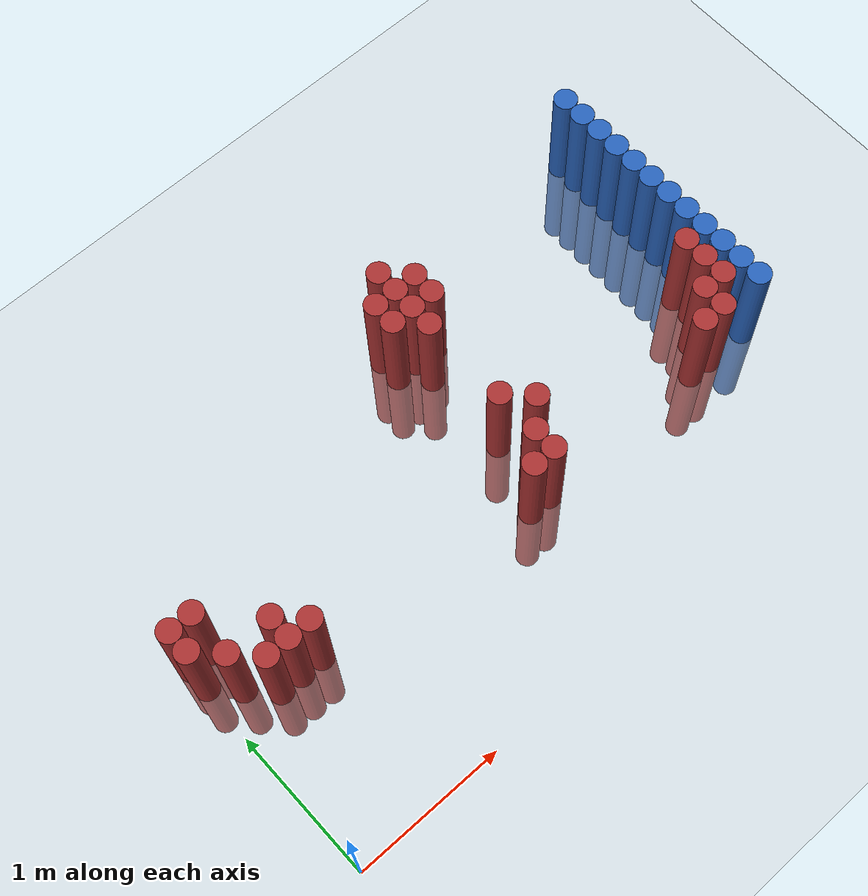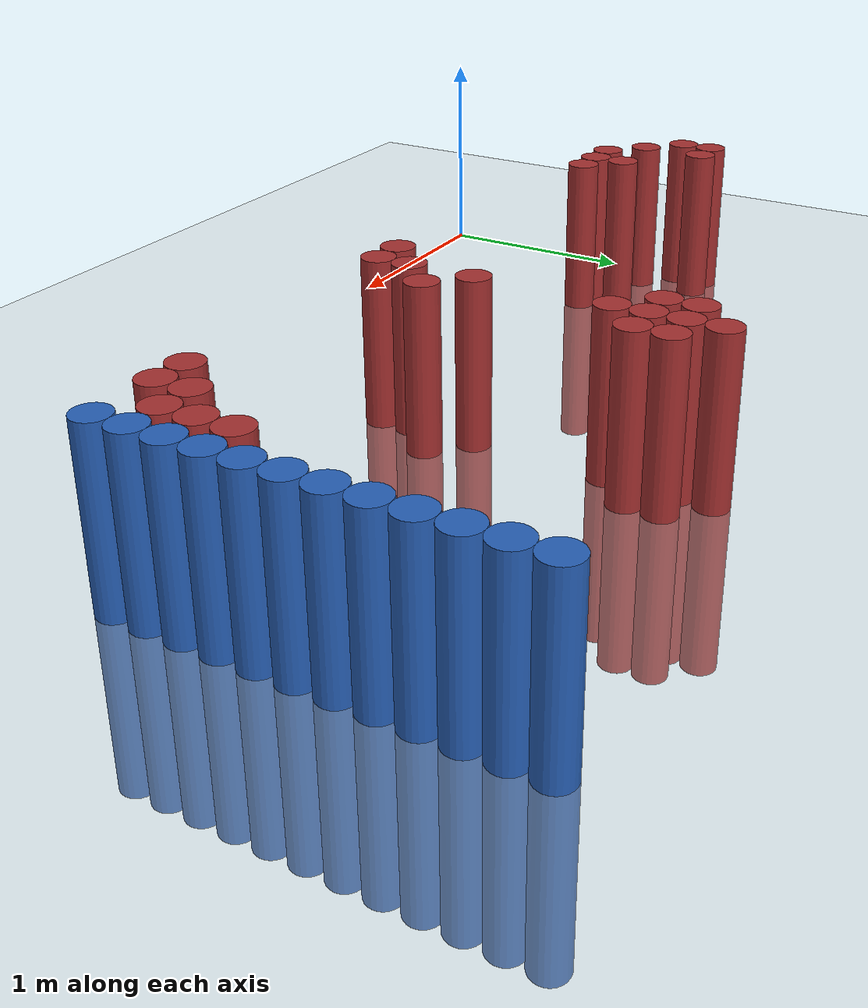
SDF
<sdf version="1.6">
 <world name="default">
  <model name="ground_plane">
   <static>1</static>
   <link name="link">
    <collision name="collision">
     <geometry><plane><normal>0 0 1</normal><size>100 100</size></plane></geometry>
     <surface><friction><ode><mu>100</mu><mu2>50</mu2></ode></friction></surface>
    </collision>
    <visual name="visual">
     <cast_shadows>0</cast_shadows>
     <geometry><plane><normal>0 0 1</normal><size>100 100</size></plane></geometry>
     <material>
      <script><uri>file://media/materials/scripts/gazebo.material</uri><name>Gazebo/Grey</name></script>
     </material>
    </visual>
   </link>
  </model>
  <model name="unit_cylinder_126">
   <static>1</static>
   <pose>3.925000 0.925000 0.000000 0.000000 0.000000 0.000000</pose>
   <link name="link">
    <inertial>
     <mass>1</mass>
     <inertia><ixx>0.145833</ixx><ixy>0</ixy><ixz>0</ixz><iyy>0.145833</iyy><iyz>0</iyz><izz>0.125</izz></inertia>
    </inertial>
    <collision name="collision">
     <geometry><cylinder><radius>0.075000</radius><length>1.5</length></cylinder></geometry>
    </collision>
    <visual name="visual">
     <geometry><cylinder><radius>0.075000</radius><length>1.5</length></cylinder></geometry>
     <material>
      <ambient>0.152000 0.379000 0.720000 1</ambient>
      <diffuse>0.152000 0.379000 0.720000 1</diffuse>
     </material>
     <material>
      <script><name>Gazebo/Grey</name><uri>file://media/materials/scripts/gazebo.material</uri></script>
     </material>
    </visual>
   </link>
  </model>
  <model name="unit_cylinder_128">
   <static>1</static>
   <pose>3.925000 1.075000 0.000000 0.000000 0.000000 0.000000</pose>
   <link name="link">
    <inertial>
     <mass>1</mass>
     <inertia><ixx>0.145833</ixx><ixy>0</ixy><ixz>0</ixz><iyy>0.145833</iyy><iyz>0</iyz><izz>0.125</izz></inertia>
    </inertial>
    <collision name="collision">
     <geometry><cylinder><radius>0.075000</radius><length>1.5</length></cylinder></geometry>
    </collision>
    <visual name="visual">
     <geometry><cylinder><radius>0.075000</radius><length>1.5</length></cylinder></geometry>
     <material>
      <ambient>0.152000 0.379000 0.720000 1</ambient>
      <diffuse>0.152000 0.379000 0.720000 1</diffuse>
     </material>
     <material>
      <script><name>Gazebo/Grey</name><uri>file://media/materials/scripts/gazebo.material</uri></script>
     </material>
    </visual>
   </link>
  </model>
  <model name="unit_cylinder_130">
   <static>1</static>
   <pose>3.925000 1.225000 0.000000 0.000000 0.000000 0.000000</pose>
   <link name="link">
    <inertial>
     <mass>1</mass>
     <inertia><ixx>0.145833</ixx><ixy>0</ixy><ixz>0</ixz><iyy>0.145833</iyy><iyz>0</iyz><izz>0.125</izz></inertia>
    </inertial>
    <collision name="collision">
     <geometry><cylinder><radius>0.075000</radius><length>1.5</length></cylinder></geometry>
    </collision>
    <visual name="visual">
     <geometry><cylinder><radius>0.075000</radius><length>1.5</length></cylinder></geometry>
     <material>
      <ambient>0.152000 0.379000 0.720000 1</ambient>
      <diffuse>0.152000 0.379000 0.720000 1</diffuse>
     </material>
     <material>
      <script><name>Gazebo/Grey</name><uri>file://media/materials/scripts/gazebo.material</uri></script>
     </material>
    </visual>
   </link>
  </model>
  <model name="unit_cylinder_132">
   <static>1</static>
   <pose>3.925000 1.375000 0.000000 0.000000 0.000000 0.000000</pose>
   <link name="link">
    <inertial>
     <mass>1</mass>
     <inertia><ixx>0.145833</ixx><ixy>0</ixy><ixz>0</ixz><iyy>0.145833</iyy><iyz>0</iyz><izz>0.125</izz></inertia>
    </inertial>
    <collision name="collision">
     <geometry><cylinder><radius>0.075000</radius><length>1.5</length></cylinder></geometry>
    </collision>
    <visual name="visual">
     <geometry><cylinder><radius>0.075000</radius><length>1.5</length></cylinder></geometry>
     <material>
      <ambient>0.152000 0.379000 0.720000 1</ambient>
      <diffuse>0.152000 0.379000 0.720000 1</diffuse>
     </material>
     <material>
      <script><name>Gazebo/Grey</name><uri>file://media/materials/scripts/gazebo.material</uri></script>
     </material>
    </visual>
   </link>
  </model>
  <model name="unit_cylinder_134">
   <static>1</static>
   <pose>3.925000 1.525000 0.000000 0.000000 0.000000 0.000000</pose>
   <link name="link">
    <inertial>
     <mass>1</mass>
     <inertia><ixx>0.145833</ixx><ixy>0</ixy><ixz>0</ixz><iyy>0.145833</iyy><iyz>0</iyz><izz>0.125</izz></inertia>
    </inertial>
    <collision name="collision">
     <geometry><cylinder><radius>0.075000</radius><length>1.5</length></cylinder></geometry>
    </collision>
    <visual name="visual">
     <geometry><cylinder><radius>0.075000</radius><length>1.5</length></cylinder></geometry>
     <material>
      <ambient>0.152000 0.379000 0.720000 1</ambient>
      <diffuse>0.152000 0.379000 0.720000 1</diffuse>
     </material>
     <material>
      <script><name>Gazebo/Grey</name><uri>file://media/materials/scripts/gazebo.material</uri></script>
     </material>
    </visual>
   </link>
  </model>
  <model name="unit_cylinder_136">
   <static>1</static>
   <pose>3.925000 1.675000 0.000000 0.000000 0.000000 0.000000</pose>
   <link name="link">
    <inertial>
     <mass>1</mass>
     <inertia><ixx>0.145833</ixx><ixy>0</ixy><ixz>0</ixz><iyy>0.145833</iyy><iyz>0</iyz><izz>0.125</izz></inertia>
    </inertial>
    <collision name="collision">
     <geometry><cylinder><radius>0.075000</radius><length>1.5</length></cylinder></geometry>
    </collision>
    <visual name="visual">
     <geometry><cylinder><radius>0.075000</radius><length>1.5</length></cylinder></geometry>
     <material>
      <ambient>0.152000 0.379000 0.720000 1</ambient>
      <diffuse>0.152000 0.379000 0.720000 1</diffuse>
     </material>
     <material>
      <script><name>Gazebo/Grey</name><uri>file://media/materials/scripts/gazebo.material</uri></script>
     </material>
    </visual>
   </link>
  </model>
  <model name="unit_cylinder_138">
   <static>1</static>
   <pose>3.925000 1.825000 0.000000 0.000000 0.000000 0.000000</pose>
   <link name="link">
    <inertial>
     <mass>1</mass>
     <inertia><ixx>0.145833</ixx><ixy>0</ixy><ixz>0</ixz><iyy>0.145833</iyy><iyz>0</iyz><izz>0.125</izz></inertia>
    </inertial>
    <collision name="collision">
     <geometry><cylinder><radius>0.075000</radius><length>1.5</length></cylinder></geometry>
    </collision>
    <visual name="visual">
     <geometry><cylinder><radius>0.075000</radius><length>1.5</length></cylinder></geometry>
     <material>
      <ambient>0.152000 0.379000 0.720000 1</ambient>
      <diffuse>0.152000 0.379000 0.720000 1</diffuse>
     </material>
     <material>
      <script><name>Gazebo/Grey</name><uri>file://media/materials/scripts/gazebo.material</uri></script>
     </material>
    </visual>
   </link>
  </model>
  <model name="unit_cylinder_140">
   <static>1</static>
   <pose>3.925000 1.975000 0.000000 0.000000 0.000000 0.000000</pose>
   <link name="link">
    <inertial>
     <mass>1</mass>
     <inertia><ixx>0.145833</ixx><ixy>0</ixy><ixz>0</ixz><iyy>0.145833</iyy><iyz>0</iyz><izz>0.125</izz></inertia>
    </inertial>
    <collision name="collision">
     <geometry><cylinder><radius>0.075000</radius><length>1.5</length></cylinder></geometry>
    </collision>
    <visual name="visual">
     <geometry><cylinder><radius>0.075000</radius><length>1.5</length></cylinder></geometry>
     <material>
      <ambient>0.152000 0.379000 0.720000 1</ambient>
      <diffuse>0.152000 0.379000 0.720000 1</diffuse>
     </material>
     <material>
      <script><name>Gazebo/Grey</name><uri>file://media/materials/scripts/gazebo.material</uri></script>
     </material>
    </visual>
   </link>
  </model>
  <model name="unit_cylinder_142">
   <static>1</static>
   <pose>3.925000 2.125000 0.000000 0.000000 0.000000 0.000000</pose>
   <link name="link">
    <inertial>
     <mass>1</mass>
     <inertia><ixx>0.145833</ixx><ixy>0</ixy><ixz>0</ixz><iyy>0.145833</iyy><iyz>0</iyz><izz>0.125</izz></inertia>
    </inertial>
    <collision name="collision">
     <geometry><cylinder><radius>0.075000</radius><length>1.5</length></cylinder></geometry>
    </collision>
    <visual name="visual">
     <geometry><cylinder><radius>0.075000</radius><length>1.5</length></cylinder></geometry>
     <material>
      <ambient>0.152000 0.379000 0.720000 1</ambient>
      <diffuse>0.152000 0.379000 0.720000 1</diffuse>
     </material>
     <material>
      <script><name>Gazebo/Grey</name><uri>file://media/materials/scripts/gazebo.material</uri></script>
     </material>
    </visual>
   </link>
  </model>
  <model name="unit_cylinder_144">
   <static>1</static>
   <pose>3.925000 2.275000 0.000000 0.000000 0.000000 0.000000</pose>
   <link name="link">
    <inertial>
     <mass>1</mass>
     <inertia><ixx>0.145833</ixx><ixy>0</ixy><ixz>0</ixz><iyy>0.145833</iyy><iyz>0</iyz><izz>0.125</izz></inertia>
    </inertial>
    <collision name="collision">
     <geometry><cylinder><radius>0.075000</radius><length>1.5</length></cylinder></geometry>
    </collision>
    <visual name="visual">
     <geometry><cylinder><radius>0.075000</radius><length>1.5</length></cylinder></geometry>
     <material>
      <ambient>0.152000 0.379000 0.720000 1</ambient>
      <diffuse>0.152000 0.379000 0.720000 1</diffuse>
     </material>
     <material>
      <script><name>Gazebo/Grey</name><uri>file://media/materials/scripts/gazebo.material</uri></script>
     </material>
    </visual>
   </link>
  </model>
  <model name="unit_cylinder_146">
   <static>1</static>
   <pose>3.925000 2.425000 0.000000 0.000000 0.000000 0.000000</pose>
   <link name="link">
    <inertial>
     <mass>1</mass>
     <inertia><ixx>0.145833</ixx><ixy>0</ixy><ixz>0</ixz><iyy>0.145833</iyy><iyz>0</iyz><izz>0.125</izz></inertia>
    </inertial>
    <collision name="collision">
     <geometry><cylinder><radius>0.075000</radius><length>1.5</length></cylinder></geometry>
    </collision>
    <visual name="visual">
     <geometry><cylinder><radius>0.075000</radius><length>1.5</length></cylinder></geometry>
     <material>
      <ambient>0.152000 0.379000 0.720000 1</ambient>
      <diffuse>0.152000 0.379000 0.720000 1</diffuse>
     </material>
     <material>
      <script><name>Gazebo/Grey</name><uri>file://media/materials/scripts/gazebo.material</uri></script>
     </material>
    </visual>
   </link>
  </model>
  <model name="unit_cylinder_148">
   <static>1</static>
   <pose>3.925000 2.575000 0.000000 0.000000 0.000000 0.000000</pose>
   <link name="link">
    <inertial>
     <mass>1</mass>
     <inertia><ixx>0.145833</ixx><ixy>0</ixy><ixz>0</ixz><iyy>0.145833</iyy><iyz>0</iyz><izz>0.125</izz></inertia>
    </inertial>
    <collision name="collision">
     <geometry><cylinder><radius>0.075000</radius><length>1.5</length></cylinder></geometry>
    </collision>
    <visual name="visual">
     <geometry><cylinder><radius>0.075000</radius><length>1.5</length></cylinder></geometry>
     <material>
      <ambient>0.152000 0.379000 0.720000 1</ambient>
      <diffuse>0.152000 0.379000 0.720000 1</diffuse>
     </material>
     <material>
      <script><name>Gazebo/Grey</name><uri>file://media/materials/scripts/gazebo.material</uri></script>
     </material>
    </visual>
   </link>
  </model>
  <model name="unit_cylinder_386">
   <static>1</static>
   <pose>0.025000 1.375000 0.000000 0.000000 0.000000 0.000000</pose>
   <link name="link">
    <inertial>
     <mass>1</mass>
     <inertia><ixx>0.145833</ixx><ixy>0</ixy><ixz>0</ixz><iyy>0.145833</iyy><iyz>0</iyz><izz>0.125</izz></inertia>
    </inertial>
    <collision name="collision">
     <geometry><cylinder><radius>0.075000</radius><length>1.5</length></cylinder></geometry>
    </collision>
    <visual name="visual">
     <geometry><cylinder><radius>0.075000</radius><length>1.5</length></cylinder></geometry>
     <material>
      <ambient>0.648000 0.192000 0.192000 1</ambient>
      <diffuse>0.648000 0.192000 0.192000 1</diffuse>
     </material>
     <material>
      <script><name>Gazebo/Grey</name><uri>file://media/materials/scripts/gazebo.material</uri></script>
     </material>
    </visual>
   </link>
  </model>
  <model name="unit_cylinder_387">
   <static>1</static>
   <pose>0.025000 1.525000 0.000000 0.000000 0.000000 0.000000</pose>
   <link name="link">
    <inertial>
     <mass>1</mass>
     <inertia><ixx>0.145833</ixx><ixy>0</ixy><ixz>0</ixz><iyy>0.145833</iyy><iyz>0</iyz><izz>0.125</izz></inertia>
    </inertial>
    <collision name="collision">
     <geometry><cylinder><radius>0.075000</radius><length>1.5</length></cylinder></geometry>
    </collision>
    <visual name="visual">
     <geometry><cylinder><radius>0.075000</radius><length>1.5</length></cylinder></geometry>
     <material>
      <ambient>0.648000 0.192000 0.192000 1</ambient>
      <diffuse>0.648000 0.192000 0.192000 1</diffuse>
     </material>
     <material>
      <script><name>Gazebo/Grey</name><uri>file://media/materials/scripts/gazebo.material</uri></script>
     </material>
    </visual>
   </link>
  </model>
  <model name="unit_cylinder_392">
   <static>1</static>
   <pose>0.175000 1.225000 0.000000 0.000000 0.000000 0.000000</pose>
   <link name="link">
    <inertial>
     <mass>1</mass>
     <inertia><ixx>0.145833</ixx><ixy>0</ixy><ixz>0</ixz><iyy>0.145833</iyy><iyz>0</iyz><izz>0.125</izz></inertia>
    </inertial>
    <collision name="collision">
     <geometry><cylinder><radius>0.075000</radius><length>1.5</length></cylinder></geometry>
    </collision>
    <visual name="visual">
     <geometry><cylinder><radius>0.075000</radius><length>1.5</length></cylinder></geometry>
     <material>
      <ambient>0.648000 0.192000 0.192000 1</ambient>
      <diffuse>0.648000 0.192000 0.192000 1</diffuse>
     </material>
     <material>
      <script><name>Gazebo/Grey</name><uri>file://media/materials/scripts/gazebo.material</uri></script>
     </material>
    </visual>
   </link>
  </model>
  <model name="unit_cylinder_393">
   <static>1</static>
   <pose>0.175000 1.525000 0.000000 0.000000 0.000000 0.000000</pose>
   <link name="link">
    <inertial>
     <mass>1</mass>
     <inertia><ixx>0.145833</ixx><ixy>0</ixy><ixz>0</ixz><iyy>0.145833</iyy><iyz>0</iyz><izz>0.125</izz></inertia>
    </inertial>
    <collision name="collision">
     <geometry><cylinder><radius>0.075000</radius><length>1.5</length></cylinder></geometry>
    </collision>
    <visual name="visual">
     <geometry><cylinder><radius>0.075000</radius><length>1.5</length></cylinder></geometry>
     <material>
      <ambient>0.648000 0.192000 0.192000 1</ambient>
      <diffuse>0.648000 0.192000 0.192000 1</diffuse>
     </material>
     <material>
      <script><name>Gazebo/Grey</name><uri>file://media/materials/scripts/gazebo.material</uri></script>
     </material>
    </visual>
   </link>
  </model>
  <model name="unit_cylinder_399">
   <static>1</static>
   <pose>0.325000 1.075000 0.000000 0.000000 0.000000 0.000000</pose>
   <link name="link">
    <inertial>
     <mass>1</mass>
     <inertia><ixx>0.145833</ixx><ixy>0</ixy><ixz>0</ixz><iyy>0.145833</iyy><iyz>0</iyz><izz>0.125</izz></inertia>
    </inertial>
    <collision name="collision">
     <geometry><cylinder><radius>0.075000</radius><length>1.5</length></cylinder></geometry>
    </collision>
    <visual name="visual">
     <geometry><cylinder><radius>0.075000</radius><length>1.5</length></cylinder></geometry>
     <material>
      <ambient>0.648000 0.192000 0.192000 1</ambient>
      <diffuse>0.648000 0.192000 0.192000 1</diffuse>
     </material>
     <material>
      <script><name>Gazebo/Grey</name><uri>file://media/materials/scripts/gazebo.material</uri></script>
     </material>
    </visual>
   </link>
  </model>
  <model name="unit_cylinder_404">
   <static>1</static>
   <pose>0.475000 1.075000 0.000000 0.000000 0.000000 0.000000</pose>
   <link name="link">
    <inertial>
     <mass>1</mass>
     <inertia><ixx>0.145833</ixx><ixy>0</ixy><ixz>0</ixz><iyy>0.145833</iyy><iyz>0</iyz><izz>0.125</izz></inertia>
    </inertial>
    <collision name="collision">
     <geometry><cylinder><radius>0.075000</radius><length>1.5</length></cylinder></geometry>
    </collision>
    <visual name="visual">
     <geometry><cylinder><radius>0.075000</radius><length>1.5</length></cylinder></geometry>
     <material>
      <ambient>0.648000 0.192000 0.192000 1</ambient>
      <diffuse>0.648000 0.192000 0.192000 1</diffuse>
     </material>
     <material>
      <script><name>Gazebo/Grey</name><uri>file://media/materials/scripts/gazebo.material</uri></script>
     </material>
    </visual>
   </link>
  </model>
  <model name="unit_cylinder_405">
   <static>1</static>
   <pose>0.475000 1.225000 0.000000 0.000000 0.000000 0.000000</pose>
   <link name="link">
    <inertial>
     <mass>1</mass>
     <inertia><ixx>0.145833</ixx><ixy>0</ixy><ixz>0</ixz><iyy>0.145833</iyy><iyz>0</iyz><izz>0.125</izz></inertia>
    </inertial>
    <collision name="collision">
     <geometry><cylinder><radius>0.075000</radius><length>1.5</length></cylinder></geometry>
    </collision>
    <visual name="visual">
     <geometry><cylinder><radius>0.075000</radius><length>1.5</length></cylinder></geometry>
     <material>
      <ambient>0.648000 0.192000 0.192000 1</ambient>
      <diffuse>0.648000 0.192000 0.192000 1</diffuse>
     </material>
     <material>
      <script><name>Gazebo/Grey</name><uri>file://media/materials/scripts/gazebo.material</uri></script>
     </material>
    </visual>
   </link>
  </model>
  <model name="unit_cylinder_411">
   <static>1</static>
   <pose>0.625000 1.075000 0.000000 0.000000 0.000000 0.000000</pose>
   <link name="link">
    <inertial>
     <mass>1</mass>
     <inertia><ixx>0.145833</ixx><ixy>0</ixy><ixz>0</ixz><iyy>0.145833</iyy><iyz>0</iyz><izz>0.125</izz></inertia>
    </inertial>
    <collision name="collision">
     <geometry><cylinder><radius>0.075000</radius><length>1.5</length></cylinder></geometry>
    </collision>
    <visual name="visual">
     <geometry><cylinder><radius>0.075000</radius><length>1.5</length></cylinder></geometry>
     <material>
      <ambient>0.648000 0.192000 0.192000 1</ambient>
      <diffuse>0.648000 0.192000 0.192000 1</diffuse>
     </material>
     <material>
      <script><name>Gazebo/Grey</name><uri>file://media/materials/scripts/gazebo.material</uri></script>
     </material>
    </visual>
   </link>
  </model>
  <model name="unit_cylinder_436">
   <static>1</static>
   <pose>2.125000 0.925000 0.000000 0.000000 0.000000 0.000000</pose>
   <link name="link">
    <inertial>
     <mass>1</mass>
     <inertia><ixx>0.145833</ixx><ixy>0</ixy><ixz>0</ixz><iyy>0.145833</iyy><iyz>0</iyz><izz>0.125</izz></inertia>
    </inertial>
    <collision name="collision">
     <geometry><cylinder><radius>0.075000</radius><length>1.5</length></cylinder></geometry>
    </collision>
    <visual name="visual">
     <geometry><cylinder><radius>0.075000</radius><length>1.5</length></cylinder></geometry>
     <material>
      <ambient>0.648000 0.192000 0.192000 1</ambient>
      <diffuse>0.648000 0.192000 0.192000 1</diffuse>
     </material>
     <material>
      <script><name>Gazebo/Grey</name><uri>file://media/materials/scripts/gazebo.material</uri></script>
     </material>
    </visual>
   </link>
  </model>
  <model name="unit_cylinder_437">
   <static>1</static>
   <pose>2.125000 2.125000 0.000000 0.000000 0.000000 0.000000</pose>
   <link name="link">
    <inertial>
     <mass>1</mass>
     <inertia><ixx>0.145833</ixx><ixy>0</ixy><ixz>0</ixz><iyy>0.145833</iyy><iyz>0</iyz><izz>0.125</izz></inertia>
    </inertial>
    <collision name="collision">
     <geometry><cylinder><radius>0.075000</radius><length>1.5</length></cylinder></geometry>
    </collision>
    <visual name="visual">
     <geometry><cylinder><radius>0.075000</radius><length>1.5</length></cylinder></geometry>
     <material>
      <ambient>0.648000 0.192000 0.192000 1</ambient>
      <diffuse>0.648000 0.192000 0.192000 1</diffuse>
     </material>
     <material>
      <script><name>Gazebo/Grey</name><uri>file://media/materials/scripts/gazebo.material</uri></script>
     </material>
    </visual>
   </link>
  </model>
  <model name="unit_cylinder_438">
   <static>1</static>
   <pose>2.125000 2.275000 0.000000 0.000000 0.000000 0.000000</pose>
   <link name="link">
    <inertial>
     <mass>1</mass>
     <inertia><ixx>0.145833</ixx><ixy>0</ixy><ixz>0</ixz><iyy>0.145833</iyy><iyz>0</iyz><izz>0.125</izz></inertia>
    </inertial>
    <collision name="collision">
     <geometry><cylinder><radius>0.075000</radius><length>1.5</length></cylinder></geometry>
    </collision>
    <visual name="visual">
     <geometry><cylinder><radius>0.075000</radius><length>1.5</length></cylinder></geometry>
     <material>
      <ambient>0.648000 0.192000 0.192000 1</ambient>
      <diffuse>0.648000 0.192000 0.192000 1</diffuse>
     </material>
     <material>
      <script><name>Gazebo/Grey</name><uri>file://media/materials/scripts/gazebo.material</uri></script>
     </material>
    </visual>
   </link>
  </model>
  <model name="unit_cylinder_441">
   <static>1</static>
   <pose>2.275000 0.925000 0.000000 0.000000 0.000000 0.000000</pose>
   <link name="link">
    <inertial>
     <mass>1</mass>
     <inertia><ixx>0.145833</ixx><ixy>0</ixy><ixz>0</ixz><iyy>0.145833</iyy><iyz>0</iyz><izz>0.125</izz></inertia>
    </inertial>
    <collision name="collision">
     <geometry><cylinder><radius>0.075000</radius><length>1.5</length></cylinder></geometry>
    </collision>
    <visual name="visual">
     <geometry><cylinder><radius>0.075000</radius><length>1.5</length></cylinder></geometry>
     <material>
      <ambient>0.648000 0.192000 0.192000 1</ambient>
      <diffuse>0.648000 0.192000 0.192000 1</diffuse>
     </material>
     <material>
      <script><name>Gazebo/Grey</name><uri>file://media/materials/scripts/gazebo.material</uri></script>
     </material>
    </visual>
   </link>
  </model>
  <model name="unit_cylinder_442">
   <static>1</static>
   <pose>2.275000 1.075000 0.000000 0.000000 0.000000 0.000000</pose>
   <link name="link">
    <inertial>
     <mass>1</mass>
     <inertia><ixx>0.145833</ixx><ixy>0</ixy><ixz>0</ixz><iyy>0.145833</iyy><iyz>0</iyz><izz>0.125</izz></inertia>
    </inertial>
    <collision name="collision">
     <geometry><cylinder><radius>0.075000</radius><length>1.5</length></cylinder></geometry>
    </collision>
    <visual name="visual">
     <geometry><cylinder><radius>0.075000</radius><length>1.5</length></cylinder></geometry>
     <material>
      <ambient>0.648000 0.192000 0.192000 1</ambient>
      <diffuse>0.648000 0.192000 0.192000 1</diffuse>
     </material>
     <material>
      <script><name>Gazebo/Grey</name><uri>file://media/materials/scripts/gazebo.material</uri></script>
     </material>
    </visual>
   </link>
  </model>
  <model name="unit_cylinder_443">
   <static>1</static>
   <pose>2.275000 1.375000 0.000000 0.000000 0.000000 0.000000</pose>
   <link name="link">
    <inertial>
     <mass>1</mass>
     <inertia><ixx>0.145833</ixx><ixy>0</ixy><ixz>0</ixz><iyy>0.145833</iyy><iyz>0</iyz><izz>0.125</izz></inertia>
    </inertial>
    <collision name="collision">
     <geometry><cylinder><radius>0.075000</radius><length>1.5</length></cylinder></geometry>
    </collision>
    <visual name="visual">
     <geometry><cylinder><radius>0.075000</radius><length>1.5</length></cylinder></geometry>
     <material>
      <ambient>0.648000 0.192000 0.192000 1</ambient>
      <diffuse>0.648000 0.192000 0.192000 1</diffuse>
     </material>
     <material>
      <script><name>Gazebo/Grey</name><uri>file://media/materials/scripts/gazebo.material</uri></script>
     </material>
    </visual>
   </link>
  </model>
  <model name="unit_cylinder_444">
   <static>1</static>
   <pose>2.275000 1.975000 0.000000 0.000000 0.000000 0.000000</pose>
   <link name="link">
    <inertial>
     <mass>1</mass>
     <inertia><ixx>0.145833</ixx><ixy>0</ixy><ixz>0</ixz><iyy>0.145833</iyy><iyz>0</iyz><izz>0.125</izz></inertia>
    </inertial>
    <collision name="collision">
     <geometry><cylinder><radius>0.075000</radius><length>1.5</length></cylinder></geometry>
    </collision>
    <visual name="visual">
     <geometry><cylinder><radius>0.075000</radius><length>1.5</length></cylinder></geometry>
     <material>
      <ambient>0.648000 0.192000 0.192000 1</ambient>
      <diffuse>0.648000 0.192000 0.192000 1</diffuse>
     </material>
     <material>
      <script><name>Gazebo/Grey</name><uri>file://media/materials/scripts/gazebo.material</uri></script>
     </material>
    </visual>
   </link>
  </model>
  <model name="unit_cylinder_445">
   <static>1</static>
   <pose>2.275000 2.125000 0.000000 0.000000 0.000000 0.000000</pose>
   <link name="link">
    <inertial>
     <mass>1</mass>
     <inertia><ixx>0.145833</ixx><ixy>0</ixy><ixz>0</ixz><iyy>0.145833</iyy><iyz>0</iyz><izz>0.125</izz></inertia>
    </inertial>
    <collision name="collision">
     <geometry><cylinder><radius>0.075000</radius><length>1.5</length></cylinder></geometry>
    </collision>
    <visual name="visual">
     <geometry><cylinder><radius>0.075000</radius><length>1.5</length></cylinder></geometry>
     <material>
      <ambient>0.648000 0.192000 0.192000 1</ambient>
      <diffuse>0.648000 0.192000 0.192000 1</diffuse>
     </material>
     <material>
      <script><name>Gazebo/Grey</name><uri>file://media/materials/scripts/gazebo.material</uri></script>
     </material>
    </visual>
   </link>
  </model>
  <model name="unit_cylinder_446">
   <static>1</static>
   <pose>2.275000 2.275000 0.000000 0.000000 0.000000 0.000000</pose>
   <link name="link">
    <inertial>
     <mass>1</mass>
     <inertia><ixx>0.145833</ixx><ixy>0</ixy><ixz>0</ixz><iyy>0.145833</iyy><iyz>0</iyz><izz>0.125</izz></inertia>
    </inertial>
    <collision name="collision">
     <geometry><cylinder><radius>0.075000</radius><length>1.5</length></cylinder></geometry>
    </collision>
    <visual name="visual">
     <geometry><cylinder><radius>0.075000</radius><length>1.5</length></cylinder></geometry>
     <material>
      <ambient>0.648000 0.192000 0.192000 1</ambient>
      <diffuse>0.648000 0.192000 0.192000 1</diffuse>
     </material>
     <material>
      <script><name>Gazebo/Grey</name><uri>file://media/materials/scripts/gazebo.material</uri></script>
     </material>
    </visual>
   </link>
  </model>
  <model name="unit_cylinder_447">
   <static>1</static>
   <pose>2.275000 2.425000 0.000000 0.000000 0.000000 0.000000</pose>
   <link name="link">
    <inertial>
     <mass>1</mass>
     <inertia><ixx>0.145833</ixx><ixy>0</ixy><ixz>0</ixz><iyy>0.145833</iyy><iyz>0</iyz><izz>0.125</izz></inertia>
    </inertial>
    <collision name="collision">
     <geometry><cylinder><radius>0.075000</radius><length>1.5</length></cylinder></geometry>
    </collision>
    <visual name="visual">
     <geometry><cylinder><radius>0.075000</radius><length>1.5</length></cylinder></geometry>
     <material>
      <ambient>0.648000 0.192000 0.192000 1</ambient>
      <diffuse>0.648000 0.192000 0.192000 1</diffuse>
     </material>
     <material>
      <script><name>Gazebo/Grey</name><uri>file://media/materials/scripts/gazebo.material</uri></script>
     </material>
    </visual>
   </link>
  </model>
  <model name="unit_cylinder_453">
   <static>1</static>
   <pose>2.425000 1.225000 0.000000 0.000000 0.000000 0.000000</pose>
   <link name="link">
    <inertial>
     <mass>1</mass>
     <inertia><ixx>0.145833</ixx><ixy>0</ixy><ixz>0</ixz><iyy>0.145833</iyy><iyz>0</iyz><izz>0.125</izz></inertia>
    </inertial>
    <collision name="collision">
     <geometry><cylinder><radius>0.075000</radius><length>1.5</length></cylinder></geometry>
    </collision>
    <visual name="visual">
     <geometry><cylinder><radius>0.075000</radius><length>1.5</length></cylinder></geometry>
     <material>
      <ambient>0.648000 0.192000 0.192000 1</ambient>
      <diffuse>0.648000 0.192000 0.192000 1</diffuse>
     </material>
     <material>
      <script><name>Gazebo/Grey</name><uri>file://media/materials/scripts/gazebo.material</uri></script>
     </material>
    </visual>
   </link>
  </model>
  <model name="unit_cylinder_454">
   <static>1</static>
   <pose>2.425000 2.125000 0.000000 0.000000 0.000000 0.000000</pose>
   <link name="link">
    <inertial>
     <mass>1</mass>
     <inertia><ixx>0.145833</ixx><ixy>0</ixy><ixz>0</ixz><iyy>0.145833</iyy><iyz>0</iyz><izz>0.125</izz></inertia>
    </inertial>
    <collision name="collision">
     <geometry><cylinder><radius>0.075000</radius><length>1.5</length></cylinder></geometry>
    </collision>
    <visual name="visual">
     <geometry><cylinder><radius>0.075000</radius><length>1.5</length></cylinder></geometry>
     <material>
      <ambient>0.648000 0.192000 0.192000 1</ambient>
      <diffuse>0.648000 0.192000 0.192000 1</diffuse>
     </material>
     <material>
      <script><name>Gazebo/Grey</name><uri>file://media/materials/scripts/gazebo.material</uri></script>
     </material>
    </visual>
   </link>
  </model>
  <model name="unit_cylinder_455">
   <static>1</static>
   <pose>2.425000 2.275000 0.000000 0.000000 0.000000 0.000000</pose>
   <link name="link">
    <inertial>
     <mass>1</mass>
     <inertia><ixx>0.145833</ixx><ixy>0</ixy><ixz>0</ixz><iyy>0.145833</iyy><iyz>0</iyz><izz>0.125</izz></inertia>
    </inertial>
    <collision name="collision">
     <geometry><cylinder><radius>0.075000</radius><length>1.5</length></cylinder></geometry>
    </collision>
    <visual name="visual">
     <geometry><cylinder><radius>0.075000</radius><length>1.5</length></cylinder></geometry>
     <material>
      <ambient>0.648000 0.192000 0.192000 1</ambient>
      <diffuse>0.648000 0.192000 0.192000 1</diffuse>
     </material>
     <material>
      <script><name>Gazebo/Grey</name><uri>file://media/materials/scripts/gazebo.material</uri></script>
     </material>
    </visual>
   </link>
  </model>
  <model name="unit_cylinder_488">
   <static>1</static>
   <pose>3.475000 0.925000 0.000000 0.000000 0.000000 0.000000</pose>
   <link name="link">
    <inertial>
     <mass>1</mass>
     <inertia><ixx>0.145833</ixx><ixy>0</ixy><ixz>0</ixz><iyy>0.145833</iyy><iyz>0</iyz><izz>0.125</izz></inertia>
    </inertial>
    <collision name="collision">
     <geometry><cylinder><radius>0.075000</radius><length>1.5</length></cylinder></geometry>
    </collision>
    <visual name="visual">
     <geometry><cylinder><radius>0.075000</radius><length>1.5</length></cylinder></geometry>
     <material>
      <ambient>0.648000 0.192000 0.192000 1</ambient>
      <diffuse>0.648000 0.192000 0.192000 1</diffuse>
     </material>
     <material>
      <script><name>Gazebo/Grey</name><uri>file://media/materials/scripts/gazebo.material</uri></script>
     </material>
    </visual>
   </link>
  </model>
  <model name="unit_cylinder_491">
   <static>1</static>
   <pose>3.625000 0.925000 0.000000 0.000000 0.000000 0.000000</pose>
   <link name="link">
    <inertial>
     <mass>1</mass>
     <inertia><ixx>0.145833</ixx><ixy>0</ixy><ixz>0</ixz><iyy>0.145833</iyy><iyz>0</iyz><izz>0.125</izz></inertia>
    </inertial>
    <collision name="collision">
     <geometry><cylinder><radius>0.075000</radius><length>1.5</length></cylinder></geometry>
    </collision>
    <visual name="visual">
     <geometry><cylinder><radius>0.075000</radius><length>1.5</length></cylinder></geometry>
     <material>
      <ambient>0.648000 0.192000 0.192000 1</ambient>
      <diffuse>0.648000 0.192000 0.192000 1</diffuse>
     </material>
     <material>
      <script><name>Gazebo/Grey</name><uri>file://media/materials/scripts/gazebo.material</uri></script>
     </material>
    </visual>
   </link>
  </model>
  <model name="unit_cylinder_492">
   <static>1</static>
   <pose>3.625000 1.075000 0.000000 0.000000 0.000000 0.000000</pose>
   <link name="link">
    <inertial>
     <mass>1</mass>
     <inertia><ixx>0.145833</ixx><ixy>0</ixy><ixz>0</ixz><iyy>0.145833</iyy><iyz>0</iyz><izz>0.125</izz></inertia>
    </inertial>
    <collision name="collision">
     <geometry><cylinder><radius>0.075000</radius><length>1.5</length></cylinder></geometry>
    </collision>
    <visual name="visual">
     <geometry><cylinder><radius>0.075000</radius><length>1.5</length></cylinder></geometry>
     <material>
      <ambient>0.648000 0.192000 0.192000 1</ambient>
      <diffuse>0.648000 0.192000 0.192000 1</diffuse>
     </material>
     <material>
      <script><name>Gazebo/Grey</name><uri>file://media/materials/scripts/gazebo.material</uri></script>
     </material>
    </visual>
   </link>
  </model>
  <model name="unit_cylinder_505">
   <static>1</static>
   <pose>3.775000 1.075000 0.000000 0.000000 0.000000 0.000000</pose>
   <link name="link">
    <inertial>
     <mass>1</mass>
     <inertia><ixx>0.145833</ixx><ixy>0</ixy><ixz>0</ixz><iyy>0.145833</iyy><iyz>0</iyz><izz>0.125</izz></inertia>
    </inertial>
    <collision name="collision">
     <geometry><cylinder><radius>0.075000</radius><length>1.5</length></cylinder></geometry>
    </collision>
    <visual name="visual">
     <geometry><cylinder><radius>0.075000</radius><length>1.5</length></cylinder></geometry>
     <material>
      <ambient>0.648000 0.192000 0.192000 1</ambient>
      <diffuse>0.648000 0.192000 0.192000 1</diffuse>
     </material>
     <material>
      <script><name>Gazebo/Grey</name><uri>file://media/materials/scripts/gazebo.material</uri></script>
     </material>
    </visual>
   </link>
  </model>
  <model name="unit_cylinder_506">
   <static>1</static>
   <pose>3.775000 1.225000 0.000000 0.000000 0.000000 0.000000</pose>
   <link name="link">
    <inertial>
     <mass>1</mass>
     <inertia><ixx>0.145833</ixx><ixy>0</ixy><ixz>0</ixz><iyy>0.145833</iyy><iyz>0</iyz><izz>0.125</izz></inertia>
    </inertial>
    <collision name="collision">
     <geometry><cylinder><radius>0.075000</radius><length>1.5</length></cylinder></geometry>
    </collision>
    <visual name="visual">
     <geometry><cylinder><radius>0.075000</radius><length>1.5</length></cylinder></geometry>
     <material>
      <ambient>0.648000 0.192000 0.192000 1</ambient>
      <diffuse>0.648000 0.192000 0.192000 1</diffuse>
     </material>
     <material>
      <script><name>Gazebo/Grey</name><uri>file://media/materials/scripts/gazebo.material</uri></script>
     </material>
    </visual>
   </link>
  </model>
  <model name="unit_cylinder_507">
   <static>1</static>
   <pose>3.775000 1.375000 0.000000 0.000000 0.000000 0.000000</pose>
   <link name="link">
    <inertial>
     <mass>1</mass>
     <inertia><ixx>0.145833</ixx><ixy>0</ixy><ixz>0</ixz><iyy>0.145833</iyy><iyz>0</iyz><izz>0.125</izz></inertia>
    </inertial>
    <collision name="collision">
     <geometry><cylinder><radius>0.075000</radius><length>1.5</length></cylinder></geometry>
    </collision>
    <visual name="visual">
     <geometry><cylinder><radius>0.075000</radius><length>1.5</length></cylinder></geometry>
     <material>
      <ambient>0.648000 0.192000 0.192000 1</ambient>
      <diffuse>0.648000 0.192000 0.192000 1</diffuse>
     </material>
     <material>
      <script><name>Gazebo/Grey</name><uri>file://media/materials/scripts/gazebo.material</uri></script>
     </material>
    </visual>
   </link>
  </model>
  <model name="unit_cylinder_532">
   <static>1</static>
   <pose>3.925000 0.925000 0.000000 0.000000 0.000000 0.000000</pose>
   <link name="link">
    <inertial>
     <mass>1</mass>
     <inertia><ixx>0.145833</ixx><ixy>0</ixy><ixz>0</ixz><iyy>0.145833</iyy><iyz>0</iyz><izz>0.125</izz></inertia>
    </inertial>
    <collision name="collision">
     <geometry><cylinder><radius>0.075000</radius><length>1.5</length></cylinder></geometry>
    </collision>
    <visual name="visual">
     <geometry><cylinder><radius>0.075000</radius><length>1.5</length></cylinder></geometry>
     <material>
      <ambient>0.152000 0.379000 0.720000 1</ambient>
      <diffuse>0.152000 0.379000 0.720000 1</diffuse>
     </material>
     <material>
      <script><name>Gazebo/Grey</name><uri>file://media/materials/scripts/gazebo.material</uri></script>
     </material>
    </visual>
   </link>
  </model>
  <model name="unit_cylinder_533">
   <static>1</static>
   <pose>3.925000 1.075000 0.000000 0.000000 0.000000 0.000000</pose>
   <link name="link">
    <inertial>
     <mass>1</mass>
     <inertia><ixx>0.145833</ixx><ixy>0</ixy><ixz>0</ixz><iyy>0.145833</iyy><iyz>0</iyz><izz>0.125</izz></inertia>
    </inertial>
    <collision name="collision">
     <geometry><cylinder><radius>0.075000</radius><length>1.5</length></cylinder></geometry>
    </collision>
    <visual name="visual">
     <geometry><cylinder><radius>0.075000</radius><length>1.5</length></cylinder></geometry>
     <material>
      <ambient>0.152000 0.379000 0.720000 1</ambient>
      <diffuse>0.152000 0.379000 0.720000 1</diffuse>
     </material>
     <material>
      <script><name>Gazebo/Grey</name><uri>file://media/materials/scripts/gazebo.material</uri></script>
     </material>
    </visual>
   </link>
  </model>
  <model name="unit_cylinder_534">
   <static>1</static>
   <pose>3.925000 1.225000 0.000000 0.000000 0.000000 0.000000</pose>
   <link name="link">
    <inertial>
     <mass>1</mass>
     <inertia><ixx>0.145833</ixx><ixy>0</ixy><ixz>0</ixz><iyy>0.145833</iyy><iyz>0</iyz><izz>0.125</izz></inertia>
    </inertial>
    <collision name="collision">
     <geometry><cylinder><radius>0.075000</radius><length>1.5</length></cylinder></geometry>
    </collision>
    <visual name="visual">
     <geometry><cylinder><radius>0.075000</radius><length>1.5</length></cylinder></geometry>
     <material>
      <ambient>0.152000 0.379000 0.720000 1</ambient>
      <diffuse>0.152000 0.379000 0.720000 1</diffuse>
     </material>
     <material>
      <script><name>Gazebo/Grey</name><uri>file://media/materials/scripts/gazebo.material</uri></script>
     </material>
    </visual>
   </link>
  </model>
  <model name="unit_cylinder_535">
   <static>1</static>
   <pose>3.925000 1.375000 0.000000 0.000000 0.000000 0.000000</pose>
   <link name="link">
    <inertial>
     <mass>1</mass>
     <inertia><ixx>0.145833</ixx><ixy>0</ixy><ixz>0</ixz><iyy>0.145833</iyy><iyz>0</iyz><izz>0.125</izz></inertia>
    </inertial>
    <collision name="collision">
     <geometry><cylinder><radius>0.075000</radius><length>1.5</length></cylinder></geometry>
    </collision>
    <visual name="visual">
     <geometry><cylinder><radius>0.075000</radius><length>1.5</length></cylinder></geometry>
     <material>
      <ambient>0.152000 0.379000 0.720000 1</ambient>
      <diffuse>0.152000 0.379000 0.720000 1</diffuse>
     </material>
     <material>
      <script><name>Gazebo/Grey</name><uri>file://media/materials/scripts/gazebo.material</uri></script>
     </material>
    </visual>
   </link>
  </model>
  <model name="unit_cylinder_536">
   <static>1</static>
   <pose>3.925000 1.525000 0.000000 0.000000 0.000000 0.000000</pose>
   <link name="link">
    <inertial>
     <mass>1</mass>
     <inertia><ixx>0.145833</ixx><ixy>0</ixy><ixz>0</ixz><iyy>0.145833</iyy><iyz>0</iyz><izz>0.125</izz></inertia>
    </inertial>
    <collision name="collision">
     <geometry><cylinder><radius>0.075000</radius><length>1.5</length></cylinder></geometry>
    </collision>
    <visual name="visual">
     <geometry><cylinder><radius>0.075000</radius><length>1.5</length></cylinder></geometry>
     <material>
      <ambient>0.152000 0.379000 0.720000 1</ambient>
      <diffuse>0.152000 0.379000 0.720000 1</diffuse>
     </material>
     <material>
      <script><name>Gazebo/Grey</name><uri>file://media/materials/scripts/gazebo.material</uri></script>
     </material>
    </visual>
   </link>
  </model>
  <model name="unit_cylinder_537">
   <static>1</static>
   <pose>3.925000 1.675000 0.000000 0.000000 0.000000 0.000000</pose>
   <link name="link">
    <inertial>
     <mass>1</mass>
     <inertia><ixx>0.145833</ixx><ixy>0</ixy><ixz>0</ixz><iyy>0.145833</iyy><iyz>0</iyz><izz>0.125</izz></inertia>
    </inertial>
    <collision name="collision">
     <geometry><cylinder><radius>0.075000</radius><length>1.5</length></cylinder></geometry>
    </collision>
    <visual name="visual">
     <geometry><cylinder><radius>0.075000</radius><length>1.5</length></cylinder></geometry>
     <material>
      <ambient>0.152000 0.379000 0.720000 1</ambient>
      <diffuse>0.152000 0.379000 0.720000 1</diffuse>
     </material>
     <material>
      <script><name>Gazebo/Grey</name><uri>file://media/materials/scripts/gazebo.material</uri></script>
     </material>
    </visual>
   </link>
  </model>
  <model name="unit_cylinder_538">
   <static>1</static>
   <pose>3.925000 1.825000 0.000000 0.000000 0.000000 0.000000</pose>
   <link name="link">
    <inertial>
     <mass>1</mass>
     <inertia><ixx>0.145833</ixx><ixy>0</ixy><ixz>0</ixz><iyy>0.145833</iyy><iyz>0</iyz><izz>0.125</izz></inertia>
    </inertial>
    <collision name="collision">
     <geometry><cylinder><radius>0.075000</radius><length>1.5</length></cylinder></geometry>
    </collision>
    <visual name="visual">
     <geometry><cylinder><radius>0.075000</radius><length>1.5</length></cylinder></geometry>
     <material>
      <ambient>0.152000 0.379000 0.720000 1</ambient>
      <diffuse>0.152000 0.379000 0.720000 1</diffuse>
     </material>
     <material>
      <script><name>Gazebo/Grey</name><uri>file://media/materials/scripts/gazebo.material</uri></script>
     </material>
    </visual>
   </link>
  </model>
  <model name="unit_cylinder_539">
   <static>1</static>
   <pose>3.925000 1.975000 0.000000 0.000000 0.000000 0.000000</pose>
   <link name="link">
    <inertial>
     <mass>1</mass>
     <inertia><ixx>0.145833</ixx><ixy>0</ixy><ixz>0</ixz><iyy>0.145833</iyy><iyz>0</iyz><izz>0.125</izz></inertia>
    </inertial>
    <collision name="collision">
     <geometry><cylinder><radius>0.075000</radius><length>1.5</length></cylinder></geometry>
    </collision>
    <visual name="visual">
     <geometry><cylinder><radius>0.075000</radius><length>1.5</length></cylinder></geometry>
     <material>
      <ambient>0.152000 0.379000 0.720000 1</ambient>
      <diffuse>0.152000 0.379000 0.720000 1</diffuse>
     </material>
     <material>
      <script><name>Gazebo/Grey</name><uri>file://media/materials/scripts/gazebo.material</uri></script>
     </material>
    </visual>
   </link>
  </model>
  <model name="unit_cylinder_540">
   <static>1</static>
   <pose>3.925000 2.125000 0.000000 0.000000 0.000000 0.000000</pose>
   <link name="link">
    <inertial>
     <mass>1</mass>
     <inertia><ixx>0.145833</ixx><ixy>0</ixy><ixz>0</ixz><iyy>0.145833</iyy><iyz>0</iyz><izz>0.125</izz></inertia>
    </inertial>
    <collision name="collision">
     <geometry><cylinder><radius>0.075000</radius><length>1.5</length></cylinder></geometry>
    </collision>
    <visual name="visual">
     <geometry><cylinder><radius>0.075000</radius><length>1.5</length></cylinder></geometry>
     <material>
      <ambient>0.152000 0.379000 0.720000 1</ambient>
      <diffuse>0.152000 0.379000 0.720000 1</diffuse>
     </material>
     <material>
      <script><name>Gazebo/Grey</name><uri>file://media/materials/scripts/gazebo.material</uri></script>
     </material>
    </visual>
   </link>
  </model>
  <model name="unit_cylinder_541">
   <static>1</static>
   <pose>3.925000 2.275000 0.000000 0.000000 0.000000 0.000000</pose>
   <link name="link">
    <inertial>
     <mass>1</mass>
     <inertia><ixx>0.145833</ixx><ixy>0</ixy><ixz>0</ixz><iyy>0.145833</iyy><iyz>0</iyz><izz>0.125</izz></inertia>
    </inertial>
    <collision name="collision">
     <geometry><cylinder><radius>0.075000</radius><length>1.5</length></cylinder></geometry>
    </collision>
    <visual name="visual">
     <geometry><cylinder><radius>0.075000</radius><length>1.5</length></cylinder></geometry>
     <material>
      <ambient>0.152000 0.379000 0.720000 1</ambient>
      <diffuse>0.152000 0.379000 0.720000 1</diffuse>
     </material>
     <material>
      <script><name>Gazebo/Grey</name><uri>file://media/materials/scripts/gazebo.material</uri></script>
     </material>
    </visual>
   </link>
  </model>
  <model name="unit_cylinder_542">
   <static>1</static>
   <pose>3.925000 2.425000 0.000000 0.000000 0.000000 0.000000</pose>
   <link name="link">
    <inertial>
     <mass>1</mass>
     <inertia><ixx>0.145833</ixx><ixy>0</ixy><ixz>0</ixz><iyy>0.145833</iyy><iyz>0</iyz><izz>0.125</izz></inertia>
    </inertial>
    <collision name="collision">
     <geometry><cylinder><radius>0.075000</radius><length>1.5</length></cylinder></geometry>
    </collision>
    <visual name="visual">
     <geometry><cylinder><radius>0.075000</radius><length>1.5</length></cylinder></geometry>
     <material>
      <ambient>0.152000 0.379000 0.720000 1</ambient>
      <diffuse>0.152000 0.379000 0.720000 1</diffuse>
     </material>
     <material>
      <script><name>Gazebo/Grey</name><uri>file://media/materials/scripts/gazebo.material</uri></script>
     </material>
    </visual>
   </link>
  </model>
  <model name="unit_cylinder_543">
   <static>1</static>
   <pose>3.925000 2.575000 0.000000 0.000000 0.000000 0.000000</pose>
   <link name="link">
    <inertial>
     <mass>1</mass>
     <inertia><ixx>0.145833</ixx><ixy>0</ixy><ixz>0</ixz><iyy>0.145833</iyy><iyz>0</iyz><izz>0.125</izz></inertia>
    </inertial>
    <collision name="collision">
     <geometry><cylinder><radius>0.075000</radius><length>1.5</length></cylinder></geometry>
    </collision>
    <visual name="visual">
     <geometry><cylinder><radius>0.075000</radius><length>1.5</length></cylinder></geometry>
     <material>
      <ambient>0.152000 0.379000 0.720000 1</ambient>
      <diffuse>0.152000 0.379000 0.720000 1</diffuse>
     </material>
     <material>
      <script><name>Gazebo/Grey</name><uri>file://media/materials/scripts/gazebo.material</uri></script>
     </material>
    </visual>
   </link>
  </model>
 </world>
</sdf>
